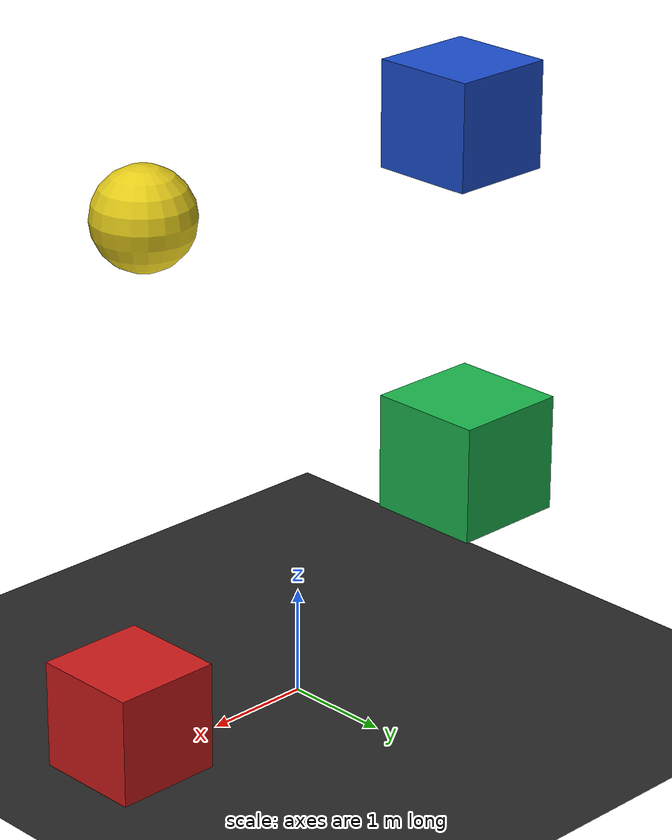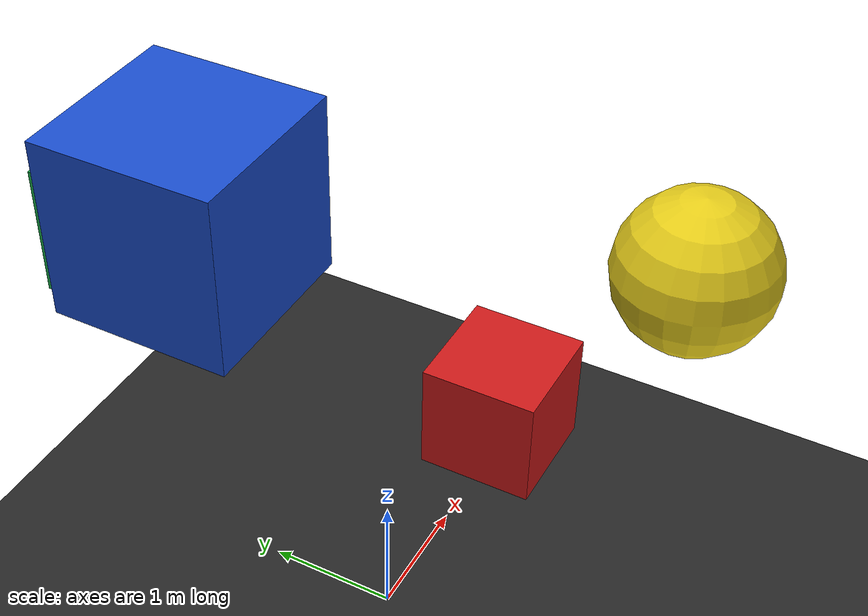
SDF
<?xml version="1.0" ?>
<sdf version="1.8">
  <world name="uspace_world">
    <physics type="ode">
      <max_step_size>0.001</max_step_size>
      <real_time_factor>1</real_time_factor>
    </physics>

    <light type="directional" name="sun">
      <cast_shadows>true</cast_shadows>
      <pose>0 0 10 0 0 0</pose>
      <diffuse>0.8 0.8 0.8 1</diffuse>
      <specular>0.2 0.2 0.2 1</specular>
      <direction>-0.5 0.1 -0.9</direction>
    </light>

    <model name="ground_plane">
      <static>true</static>
      <link name="link">
        <collision name="collision">
          <geometry><plane><normal>0 0 1</normal><size>100 100</size></plane></geometry>
        </collision>
        <visual name="visual">
          <geometry><plane><normal>0 0 1</normal><size>100 100</size></plane></geometry>
          <material>
            <ambient>0.15 0.15 0.15 1</ambient>
            <diffuse>0.15 0.15 0.15 1</diffuse>
          </material>
        </visual>
      </link>
    </model>

    <!-- Red box - on ground -->
    <model name="box_red">
      <pose>2 0 0.5 0 0 0</pose>
      <link name="link">
        <inertial><mass>1.0</mass>
          <inertia><ixx>0.167</ixx><iyy>0.167</iyy><izz>0.167</izz></inertia>
        </inertial>
        <collision name="collision">
          <geometry><box><size>1 1 1</size></box></geometry>
        </collision>
        <visual name="visual">
          <geometry><box><size>1 1 1</size></box></geometry>
          <material>
            <ambient>0.8 0.1 0.1 1</ambient>
            <diffuse>0.8 0.1 0.1 1</diffuse>
          </material>
        </visual>
      </link>
    </model>

    <!-- Green box - dropped from height -->
    <model name="box_green">
      <pose>0 2 3.0 0 0 0</pose>
      <link name="link">
        <inertial><mass>1.0</mass>
          <inertia><ixx>0.167</ixx><iyy>0.167</iyy><izz>0.167</izz></inertia>
        </inertial>
        <collision name="collision">
          <geometry><box><size>1 1 1</size></box></geometry>
        </collision>
        <visual name="visual">
          <geometry><box><size>1 1 1</size></box></geometry>
          <material>
            <ambient>0.1 0.7 0.3 1</ambient>
            <diffuse>0.1 0.7 0.3 1</diffuse>
          </material>
        </visual>
      </link>
    </model>

    <!-- Blue box - dropped from higher -->
    <model name="box_blue">
      <pose>-2 0 5.0 0 0 0</pose>
      <link name="link">
        <inertial><mass>1.0</mass>
          <inertia><ixx>0.167</ixx><iyy>0.167</iyy><izz>0.167</izz></inertia>
        </inertial>
        <collision name="collision">
          <geometry><box><size>1 1 1</size></box></geometry>
        </collision>
        <visual name="visual">
          <geometry><box><size>1 1 1</size></box></geometry>
          <material>
            <ambient>0.1 0.3 0.8 1</ambient>
            <diffuse>0.1 0.3 0.8 1</diffuse>
          </material>
        </visual>
      </link>
    </model>

    <!-- Yellow sphere -->
    <model name="sphere_yellow">
      <pose>0 -2 4.0 0 0 0</pose>
      <link name="link">
        <inertial><mass>0.5</mass>
          <inertia><ixx>0.04</ixx><iyy>0.04</iyy><izz>0.04</izz></inertia>
        </inertial>
        <collision name="collision">
          <geometry><sphere><radius>0.5</radius></sphere></geometry>
        </collision>
        <visual name="visual">
          <geometry><sphere><radius>0.5</radius></sphere></geometry>
          <material>
            <ambient>0.9 0.8 0.1 1</ambient>
            <diffuse>0.9 0.8 0.1 1</diffuse>
          </material>
        </visual>
      </link>
    </model>
  </world>
</sdf>
